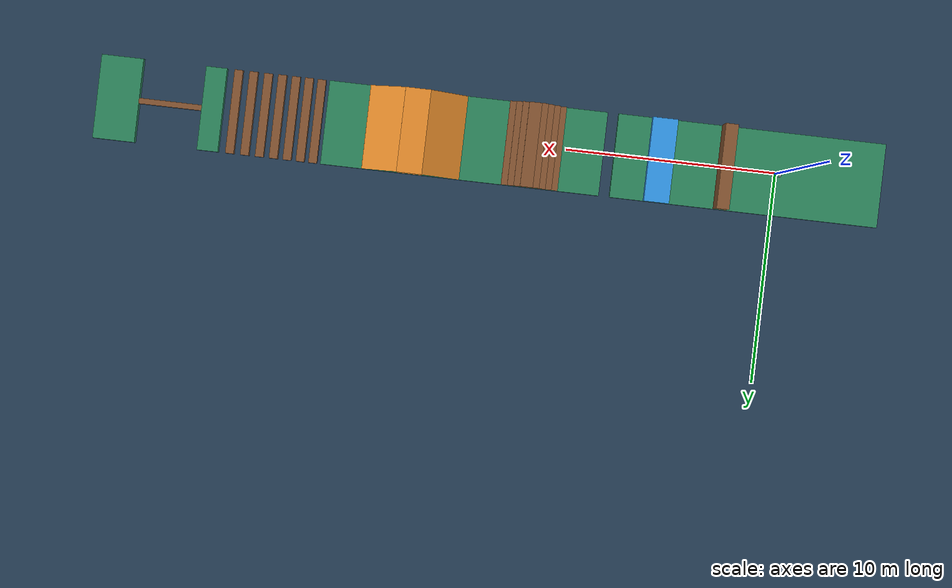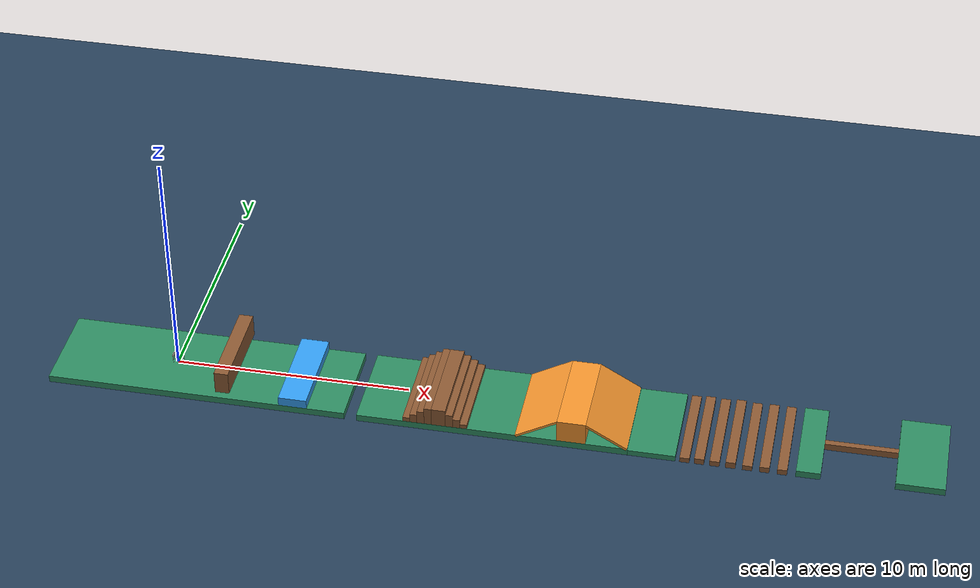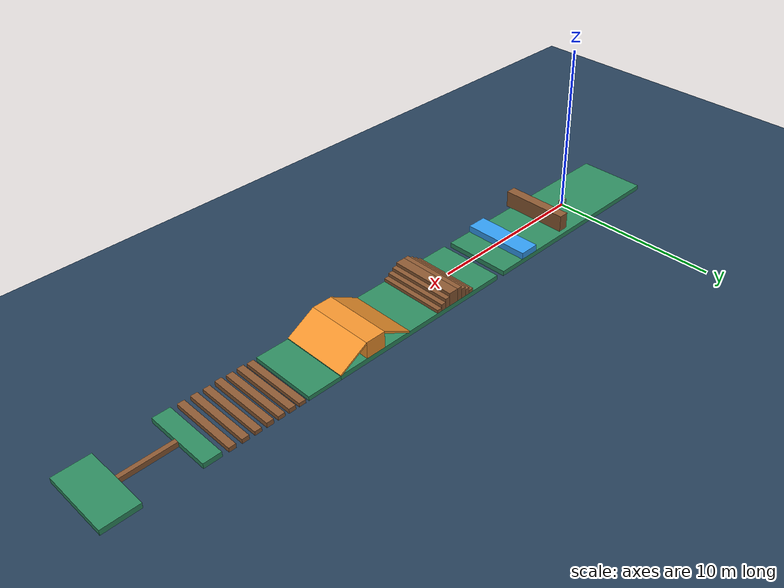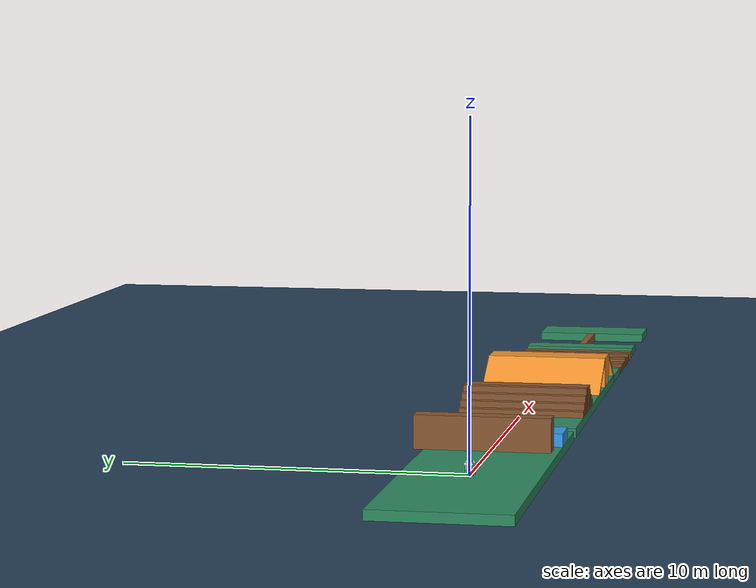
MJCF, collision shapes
<mujoco model="empty_world">
  <include file="go1.xml"/>
  <statistic center="0 0 0.1" extent="0.8"/>

  <visual>
    <headlight diffuse="0.6 0.6 0.6" ambient="0.3 0.3 0.3" specular="0 0 0"/>
    <rgba haze="0.15 0.25 0.35 1"/>
    <global azimuth="-130" elevation="-20"/>
  </visual>

  <asset>
    <texture type="skybox" builtin="gradient" rgb1="0.3 0.5 0.7" rgb2="0 0 0" width="512" height="3072"/>
    <texture type="2d" name="groundplane" builtin="checker" mark="edge" rgb1="0.2 0.3 0.4" rgb2="0.1 0.2 0.3"
      markrgb="0.8 0.8 0.8" width="300" height="300"/>
    <material name="groundplane" texture="groundplane" texuniform="true" texrepeat="5 5" reflectance="0.2"/>
    <texture type="2d" name="wood_tex" builtin="flat" rgb1="0.55 0.35 0.2" width="512" height="512"/>
    <material name="wood_mat" texture="wood_tex" specular="0.2" shininess="0.1" rgba="1 1 1 1"/>
    <material name="runway_mat" rgba="0.18 0.55 0.38 1" specular="0.15" shininess="0.2"/>
  </asset>

  <worldbody>
    <light pos="0 0 1.5" dir="0 0 -1" directional="true"/>

    <!-- 无限底面在 z=-0.30；上方 30 cm 高跑道在 x=[7.8, 8.2] 留出 0.4 m gap。 -->
    <geom name="floor" type="plane" pos="0 0 -0.30" size="0 0 0.05" material="groundplane"/>
    <geom name="ground_before_gap" type="box" pos="1.3 0 -0.15" size="6.4 2.0 0.15" material="runway_mat"/>
    <geom name="ground_after_gap" type="box" pos="13.9 0 -0.15" size="5.675 2.0 0.15" material="runway_mat"/>

    <!-- 1. 匍匐障碍：x=[2.0, 3.0]，顶障下表面离地 0.30 m。 -->
    <geom name="crawl_overhead" type="box" pos="2.5 0 0.8" size="0.3 2.0 0.50" material="wood_mat"/>

    <!-- 2. 高台：x=[4.9, 6.1]，台面高度 0.40 m。 -->
    <geom name="platform_40cm" type="box" pos="5.5 0 0.20" size="0.6 2.0 0.20" rgba="0.20 0.62 0.95 1"/>

    <!-- 3. 0.4 m gap 位于 x=[7.8, 8.2]。 -->

    <!-- 4. 上下楼梯：单级长度 0.30 m、高度 0.20 m，最高 0.80 m。 -->
    <geom name="stair_up_1" type="box" pos="10.350 0 0.10" size="0.150 2.0 0.10" material="wood_mat"/>
    <geom name="stair_up_2" type="box" pos="10.650 0 0.20" size="0.150 2.0 0.20" material="wood_mat"/>
    <geom name="stair_up_3" type="box" pos="10.950 0 0.30" size="0.150 2.0 0.30" material="wood_mat"/>
    <geom name="stair_up_4" type="box" pos="11.250 0 0.40" size="0.150 2.0 0.40" material="wood_mat"/>
    <geom name="stair_top" type="box" pos="11.700 0 0.40" size="0.300 2.0 0.40" material="wood_mat"/>
    <geom name="stair_down_3" type="box" pos="12.150 0 0.30" size="0.150 2.0 0.30" material="wood_mat"/>
    <geom name="stair_down_2" type="box" pos="12.450 0 0.20" size="0.150 2.0 0.20" material="wood_mat"/>
    <geom name="stair_down_1" type="box" pos="12.750 0 0.10" size="0.150 2.0 0.10" material="wood_mat"/>

    <!-- 5. 30° 上下斜坡，中间平台高度约 1.00 m。 -->
    <geom name="slope_up" type="box" pos="15.800 0 0.457" size="1.0 2.0 0.05" euler="0 -0.523599 0" rgba="0.95 0.58 0.18 1"/>
    <geom name="slope_top" type="box" pos="17.241 0 0.500" size="0.60 2.0 0.500" rgba="0.95 0.58 0.18 1"/>
    <geom name="slope_down" type="box" pos="18.682 0 0.457" size="1.0 2.0 0.05" euler="0 0.523599 0" rgba="0.95 0.58 0.18 1"/>

    <!-- 6. 连续 gap：初始平台长 2.0 m，7 个踏板长 0.4 m，末端平台长 1.0 m。 -->
    <!-- 8 个 gap 依次为 0.18、0.20、0.23、0.25、0.28、0.30、0.32、0.35 m。 -->
    <geom name="continuous_gap_start" type="box" pos="20.550 0 -0.175" size="1.000 2.0 0.125" material="runway_mat"/>
    <geom name="continuous_gap_platform_1" type="box" pos="21.930 0 -0.190" size="0.200 2.0 0.110" material="wood_mat"/>
    <geom name="continuous_gap_platform_2" type="box" pos="22.530 0 -0.165" size="0.200 2.0 0.135" material="wood_mat"/>
    <geom name="continuous_gap_platform_3" type="box" pos="23.160 0 -0.180" size="0.200 2.0 0.120" material="wood_mat"/>
    <geom name="continuous_gap_platform_4" type="box" pos="23.810 0 -0.155" size="0.200 2.0 0.145" material="wood_mat"/>
    <geom name="continuous_gap_platform_5" type="box" pos="24.490 0 -0.185" size="0.200 2.0 0.115" material="wood_mat"/>
    <geom name="continuous_gap_platform_6" type="box" pos="25.190 0 -0.170" size="0.200 2.0 0.130" material="wood_mat"/>
    <geom name="continuous_gap_platform_7" type="box" pos="25.910 0 -0.175" size="0.200 2.0 0.125" material="wood_mat"/>
    <geom name="continuous_gap_end" type="box" pos="26.960 0 -0.150" size="0.500 2.0 0.150" material="runway_mat"/>

    <!-- 7. 独木桥：x=[27.46, 30.46]，长 3.0 m、宽 0.28 m，桥面高度 0.30 m。 -->
    <geom name="balance_beam" type="box" pos="28.960 0 -0.150" size="1.500 0.130 0.150" material="wood_mat"/>
    <!-- 独木桥后平台：x=[30.46, 32.46]，长 2.0 m。 -->
    <geom name="balance_beam_end" type="box" pos="31.460 0 -0.150" size="1.000 2.000 0.150" material="runway_mat"/>

  </worldbody>
</mujoco>

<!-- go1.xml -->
<mujoco model="go1">
  <compiler angle="radian" meshdir="../meshes" autolimits="true" />

  <option cone="elliptic" impratio="100" />

    <default>
      <joint axis="0 1 0" damping="0.1" armature="0.01" frictionloss="0.2"/>
    </default>

    <asset>
        <mesh name="trunk" file="trunk.stl" />
        <mesh name="hip" file="hip.stl" />
        <mesh name="thigh_mirror" file="thigh_mirror.stl" />
        <mesh name="calf" file="calf.stl" />
        <mesh name="thigh" file="thigh.stl" />
        <mesh name="d435" file="d435_simplified.stl" />
    </asset>

    <worldbody>
        <body name="base_link" pos="0 0 0.35">
            <inertial pos="0.0116053 0.00442221 0.000106692" quat="0.0111438 0.707126 -0.00935374 0.706938" mass="4.801" diaginertia="0.0447997 0.0366257 0.0162187" />
            <freejoint />
            <geom type="mesh" contype="0" conaffinity="0" group="1" rgba="0.913725 0.913725 0.847059 1" mesh="trunk" />
            <geom size="0.13 0.04675 0.057" type="box" rgba="0.913725 0.913725 0.847059 1" />
            <geom size="0.0005 0.0005 0.0005" pos="-0.01592 -0.06659 -0.00617" type="box" contype="0" conaffinity="0" group="1" rgba="0.8 0 0 0" />
            <geom size="0.0005 0.0005 0.0005" pos="-0.01592 -0.06659 -0.00617" type="box" rgba="0.8 0 0 0" />
            <site name="imu" pos="0 0 0"/>
            <body name="depth_camera" pos="0.28 0 0.12" euler="0 0.349066 0">
                <!-- 相对于这个body的位置和方向 不要更改 !fovy the same as D435i for 4:3 aspect ratio -->
                <camera name="depth_camera" pos="0. 0. 0." euler="1.57 -1.57 0" fovy="58"/>
                <geom type="mesh" euler="-1.57 1.57 0" contype="0" conaffinity="0" group="1" rgba="0.913725 0.913725 0.847059 1" mesh="d435" />
            </body>

            <body name="FR_hip" pos="0.1881 -0.04675 0">
                <inertial pos="-0.00406411 -0.0193463 4.50733e-06" quat="0.467526 0.531662 -0.466259 0.530431" mass="0.679292" diaginertia="0.00131334 0.00122648 0.000728484" />
                <joint name="FR_hip_joint" pos="0 0 0" axis="1 0 0" limited="true" range="-0.802851 0.802851" />
                <geom quat="0 1 0 0" type="mesh" contype="0" conaffinity="0" group="1" rgba="0.913725 0.913725 0.847059 1" mesh="hip" />
                <geom size="0.046 0.02" pos="0 -0.045 0" quat="0.707107 0.707107 0 0" type="cylinder" rgba="0.913725 0.913725 0.847059 0" />
                <geom size="0.031 0.02" pos="0 -0.07 0" quat="0.707107 0.707107 0 0" type="cylinder" rgba="0.913725 0.913725 0.847059 0" />

                <body name="FR_thigh" pos="0 -0.08 0">
                    <inertial pos="-0.003468 0.018947 -0.032736" quat="0.999266 0.00067676 -0.0382978 0.000639813" mass="0.898919" diaginertia="0.00542178 0.00514246 0.000998869" />
                    <joint name="FR_thigh_joint" pos="0 0 0" axis="0 1 0" limited="true" range="-1.0472 4.18879" />
                    <geom type="mesh" contype="0" conaffinity="0" group="1" rgba="0.913725 0.913725 0.847059 1" mesh="thigh_mirror" />
                    <geom size="0.1065 0.01225 0.017" pos="0 0 -0.1065" quat="0.707107 0 0.707107 0" type="box" rgba="0.913725 0.913725 0.847059 0" />
                    <body name="FR_calf" pos="0 0 -0.213">
                        <inertial pos="0.00455603 0.0009473 -0.147239" quat="0.762045 0.00970173 0.0180098 0.647201" mass="0.218015" diaginertia="0.00399678 0.00398122 3.99428e-05" />
                        <joint name="FR_calf_joint" pos="0 0 0" axis="0 1 0" limited="true" range="-2.69653 -0.916298" />
                        <geom type="mesh" contype="0" conaffinity="0" group="1" rgba="0 0 0 1" mesh="calf" />
                        <geom size="0.1065 0.008 0.008" pos="0 0 -0.1065" quat="0.707107 0 0.707107 0" type="box" rgba="0 0 0 0" />
                        <geom size="0.01" pos="0 0 -0.213" contype="0" conaffinity="0" group="1" rgba="0 0 0 1" />
                        <geom size="0.02" pos="0 0 -0.213" rgba="0 0 0 1" />
                    </body>
                </body>
            </body>

            <body name="FL_hip" pos="0.1881 0.04675 0">
                <inertial pos="-0.00406411 0.0193463 4.50733e-06" quat="0.531662 0.467526 -0.530431 0.466259" mass="0.679292" diaginertia="0.00131334 0.00122648 0.000728484" />
                <joint name="FL_hip_joint" pos="0 0 0" axis="1 0 0" limited="true" range="-0.802851 0.802851" />
                <geom type="mesh" contype="0" conaffinity="0" group="1" rgba="0.913725 0.913725 0.847059 1" mesh="hip" />
                <geom size="0.046 0.02" pos="0 0.045 0" quat="0.707107 0.707107 0 0" type="cylinder" rgba="0.913725 0.913725 0.847059 0" />
                <geom size="0.031 0.02" pos="0 0.07 0" quat="0.707107 0.707107 0 0" type="cylinder" rgba="0.913725 0.913725 0.847059 0" />

                <body name="FL_thigh" pos="0 0.08 0">
                    <inertial pos="-0.003468 -0.018947 -0.032736" quat="0.999266 -0.00067676 -0.0382978 -0.000639813" mass="0.898919" diaginertia="0.00542178 0.00514246 0.000998869" />
                    <joint name="FL_thigh_joint" pos="0 0 0" axis="0 1 0" limited="true" range="-1.0472 4.18879" />
                    <geom type="mesh" contype="0" conaffinity="0" group="1" rgba="0.913725 0.913725 0.847059 1" mesh="thigh" />
                    <geom size="0.1065 0.01225 0.017" pos="0 0 -0.1065" quat="0.707107 0 0.707107 0" type="box" rgba="0.913725 0.913725 0.847059 0" />
                    <body name="FL_calf" pos="0 0 -0.213">
                        <inertial pos="0.00455603 0.0009473 -0.147239" quat="0.762045 0.00970173 0.0180098 0.647201" mass="0.218015" diaginertia="0.00399678 0.00398122 3.99428e-05" />
                        <joint name="FL_calf_joint" pos="0 0 0" axis="0 1 0" limited="true" range="-2.69653 -0.916298" />
                        <geom type="mesh" contype="0" conaffinity="0" group="1" rgba="0 0 0 1" mesh="calf" />
                        <geom size="0.1065 0.008 0.008" pos="0 0 -0.1065" quat="0.707107 0 0.707107 0" type="box" rgba="0.913725 0.913725 0.847059 0" />
                        <geom size="0.01" pos="0 0 -0.213" contype="0" conaffinity="0" group="1" rgba="0 0 0 1" />
                        <geom size="0.02" pos="0 0 -0.213" rgba="0 0 0 1" />
                    </body>
                </body>
            </body>

            <body name="RR_hip" pos="-0.1881 -0.04675 0">
                <inertial pos="0.00406411 -0.0193463 4.50733e-06" quat="0.530431 0.466259 -0.531662 0.467526" mass="0.679292" diaginertia="0.00131334 0.00122648 0.000728484" />
                <joint name="RR_hip_joint" pos="0 0 0" axis="1 0 0" limited="true" range="-0.802851 0.802851" />
                <geom quat="0 0 0 -1" type="mesh" contype="0" conaffinity="0" group="1" rgba="0.913725 0.913725 0.847059 1" mesh="hip" />
                <geom size="0.046 0.02" quat="0.707107 0.707107 0 0" type="cylinder" rgba="0.913725 0.913725 0.847059 1" />
                <geom size="0.046 0.02" pos="0 -0.045 0" quat="0.707107 0.707107 0 0" type="cylinder" rgba="0.913725 0.913725 0.847059 0" />
                <geom size="0.031 0.02" pos="0 -0.07 0" quat="0.707107 0.707107 0 0" type="cylinder" rgba="0.913725 0.913725 0.847059 0" />

                <body name="RR_thigh" pos="0 -0.08 0">
                    <inertial pos="-0.003468 0.018947 -0.032736" quat="0.999266 0.00067676 -0.0382978 0.000639813" mass="0.898919" diaginertia="0.00542178 0.00514246 0.000998869" />
                    <joint name="RR_thigh_joint" pos="0 0 0" axis="0 1 0" limited="true" range="-1.0472 4.18879" />
                    <geom type="mesh" contype="0" conaffinity="0" group="1" rgba="0.913725 0.913725 0.847059 1" mesh="thigh_mirror" />
                    <geom size="0.1065 0.01225 0.017" pos="0 0 -0.1065" quat="0.707107 0 0.707107 0" type="box" rgba="0.913725 0.913725 0.847059 0" />
                    <body name="RR_calf" pos="0 0 -0.213">
                        <inertial pos="0.00455603 0.0009473 -0.147239" quat="0.762045 0.00970173 0.0180098 0.647201" mass="0.218015" diaginertia="0.00399678 0.00398122 3.99428e-05" />
                        <joint name="RR_calf_joint" pos="0 0 0" axis="0 1 0" limited="true" range="-2.69653 -0.916298" />
                        <geom type="mesh" contype="0" conaffinity="0" group="1" rgba="0 0 0 1" mesh="calf" />
                        <geom size="0.1065 0.008 0.008" pos="0 0 -0.1065" quat="0.707107 0 0.707107 0" type="box" rgba="0 0 0 0" />
                        <geom size="0.01" pos="0 0 -0.213" contype="0" conaffinity="0" group="1" rgba="0 0 0 1" />
                        <geom size="0.02" pos="0 0 -0.213" rgba="0 0 0 1" />
                    </body>
                </body>
            </body>

            <body name="RL_hip" pos="-0.1881 0.04675 0">
                <inertial pos="0.00406411 0.0193463 4.50733e-06" quat="0.466259 0.530431 -0.467526 0.531662" mass="0.679292" diaginertia="0.00131334 0.00122648 0.000728484" />
                <joint name="RL_hip_joint" pos="0 0 0" axis="1 0 0" limited="true" range="-0.802851 0.802851"  />
                <geom quat="0 0 1 0" type="mesh" contype="0" conaffinity="0" group="1" rgba="0.913725 0.913725 0.847059 1" mesh="hip" />
                <geom size="0.046 0.02" quat="0.707107 0.707107 0 0" type="cylinder" rgba="0.913725 0.913725 0.847059 1" />
                <geom size="0.046 0.02" pos="0 0.045 0" quat="0.707107 0.707107 0 0" type="cylinder" rgba="0.913725 0.913725 0.847059 0" />
                <geom size="0.031 0.02" pos="0 0.07 0" quat="0.707107 0.707107 0 0" type="cylinder" rgba="0.913725 0.913725 0.847059 0" />

                <body name="RL_thigh" pos="0 0.08 0">
                    <inertial pos="-0.003468 -0.018947 -0.032736" quat="0.999266 -0.00067676 -0.0382978 -0.000639813" mass="0.898919" diaginertia="0.00542178 0.00514246 0.000998869" />
                    <joint name="RL_thigh_joint" pos="0 0 0" axis="0 1 0" limited="true" range="-1.0472 4.18879" />
                    <geom type="mesh" contype="0" conaffinity="0" group="1" rgba="0.913725 0.913725 0.847059 1" mesh="thigh" />
                    <geom size="0.1065 0.01225 0.017" pos="0 0 -0.1065" quat="0.707107 0 0.707107 0" type="box" rgba="0.913725 0.913725 0.847059 0" />
                    <body name="RL_calf" pos="0 0 -0.213">
                        <inertial pos="0.00455603 0.0009473 -0.147239" quat="0.762045 0.00970173 0.0180098 0.647201" mass="0.218015" diaginertia="0.00399678 0.00398122 3.99428e-05" />
                        <joint name="RL_calf_joint" pos="0 0 0" axis="0 1 0" limited="true" range="-2.69653 -0.916298" />
                        <geom type="mesh" contype="0" conaffinity="0" group="1" rgba="0 0 0 1" mesh="calf" />
                        <geom size="0.1065 0.008 0.008" pos="0 0 -0.1065" quat="0.707107 0 0.707107 0" type="box" rgba="0 0 0 0" />
                        <geom size="0.01" pos="0 0 -0.213" contype="0" conaffinity="0" group="1" rgba="0 0 0 1" />
                        <geom size="0.02" pos="0 0 -0.213" rgba="0 0 0 1" />
                    </body>
                </body>
            </body>
        </body>
    </worldbody>

 <actuator>
    <motor name="FR_hip"       gear="1" joint="FR_hip_joint" ctrlrange="-23.7 23.7" ctrllimited="true"/>
    <motor name="FR_thigh"     gear="1" joint="FR_thigh_joint" ctrlrange="-23.7 23.7" ctrllimited="true"/>
    <motor name="FR_calf"      gear="1" joint="FR_calf_joint" ctrlrange="-33.5 33.5" ctrllimited="true"/>
    <motor name="FL_hip"       gear="1" joint="FL_hip_joint" ctrlrange="-23.7 23.7" ctrllimited="true"/>
    <motor name="FL_thigh"     gear="1" joint="FL_thigh_joint" ctrlrange="-23.7 23.7" ctrllimited="true"/>
    <motor name="FL_calf"      gear="1" joint="FL_calf_joint" ctrlrange="-33.5 33.5" ctrllimited="true"/>
    <motor name="RR_hip"       gear="1" joint="RR_hip_joint" ctrlrange="-23.7 23.7" ctrllimited="true"/>
    <motor name="RR_thigh"     gear="1" joint="RR_thigh_joint" ctrlrange="-23.7 23.7" ctrllimited="true"/>
    <motor name="RR_calf"      gear="1" joint="RR_calf_joint" ctrlrange="-33.5 33.5" ctrllimited="true"/>
    <motor name="RL_hip"       gear="1" joint="RL_hip_joint" ctrlrange="-23.7 23.7" ctrllimited="true"/>
    <motor name="RL_thigh"     gear="1" joint="RL_thigh_joint" ctrlrange="-23.7 23.7" ctrllimited="true"/>
    <motor name="RL_calf"      gear="1" joint="RL_calf_joint" ctrlrange="-33.5 33.5" ctrllimited="true"/>
  </actuator>

  <sensor>
    <jointpos name="FR_hip_pos" joint="FR_hip_joint" />
    <jointpos name="FR_thigh_pos" joint="FR_thigh_joint" />
    <jointpos name="FR_calf_pos" joint="FR_calf_joint" />
    <jointpos name="FL_hip_pos" joint="FL_hip_joint" />
    <jointpos name="FL_thigh_pos" joint="FL_thigh_joint" />
    <jointpos name="FL_calf_pos" joint="FL_calf_joint" />
    <jointpos name="RR_hip_pos" joint="RR_hip_joint" />
    <jointpos name="RR_thigh_pos" joint="RR_thigh_joint" />
    <jointpos name="RR_calf_pos" joint="RR_calf_joint" />
    <jointpos name="RL_hip_pos" joint="RL_hip_joint" />
    <jointpos name="RL_thigh_pos" joint="RL_thigh_joint" />
    <jointpos name="RL_calf_pos" joint="RL_calf_joint" />

    <jointvel name="FR_hip_vel" joint="FR_hip_joint" />
    <jointvel name="FR_thigh_vel" joint="FR_thigh_joint" />
    <jointvel name="FR_calf_vel" joint="FR_calf_joint" />
    <jointvel name="FL_hip_vel" joint="FL_hip_joint" />
    <jointvel name="FL_thigh_vel" joint="FL_thigh_joint" />
    <jointvel name="FL_calf_vel" joint="FL_calf_joint" />
    <jointvel name="RR_hip_vel" joint="RR_hip_joint" />
    <jointvel name="RR_thigh_vel" joint="RR_thigh_joint" />
    <jointvel name="RR_calf_vel" joint="RR_calf_joint" />
    <jointvel name="RL_hip_vel" joint="RL_hip_joint" />
    <jointvel name="RL_thigh_vel" joint="RL_thigh_joint" />
    <jointvel name="RL_calf_vel" joint="RL_calf_joint" />

    <jointactuatorfrc name="FR_hip_torque" joint="FR_hip_joint" noise="0.01" />
    <jointactuatorfrc name="FR_thigh_torque" joint="FR_thigh_joint" noise="0.01" />
    <jointactuatorfrc name="FR_calf_torque" joint="FR_calf_joint" noise="0.01" />
    <jointactuatorfrc name="FL_hip_torque" joint="FL_hip_joint" noise="0.01" />
    <jointactuatorfrc name="FL_thigh_torque" joint="FL_thigh_joint" noise="0.01" />
    <jointactuatorfrc name="FL_calf_torque" joint="FL_calf_joint" noise="0.01" />
    <jointactuatorfrc name="RR_hip_torque" joint="RR_hip_joint" noise="0.01" />
    <jointactuatorfrc name="RR_thigh_torque" joint="RR_thigh_joint" noise="0.01" />
    <jointactuatorfrc name="RR_calf_torque" joint="RR_calf_joint" noise="0.01" />
    <jointactuatorfrc name="RL_hip_torque" joint="RL_hip_joint" noise="0.01" />
    <jointactuatorfrc name="RL_thigh_torque" joint="RL_thigh_joint" noise="0.01" />
    <jointactuatorfrc name="RL_calf_torque" joint="RL_calf_joint" noise="0.01" />

    <framequat name="imu_quat" objtype="site" objname="imu" />
    <gyro name="imu_gyro" site="imu" />
    <accelerometer name="imu_acc" site="imu" />

    <framepos name="frame_pos" objtype="site" objname="imu" />
    <framelinvel name="frame_vel" objtype="site" objname="imu" />
  </sensor>

</mujoco>
